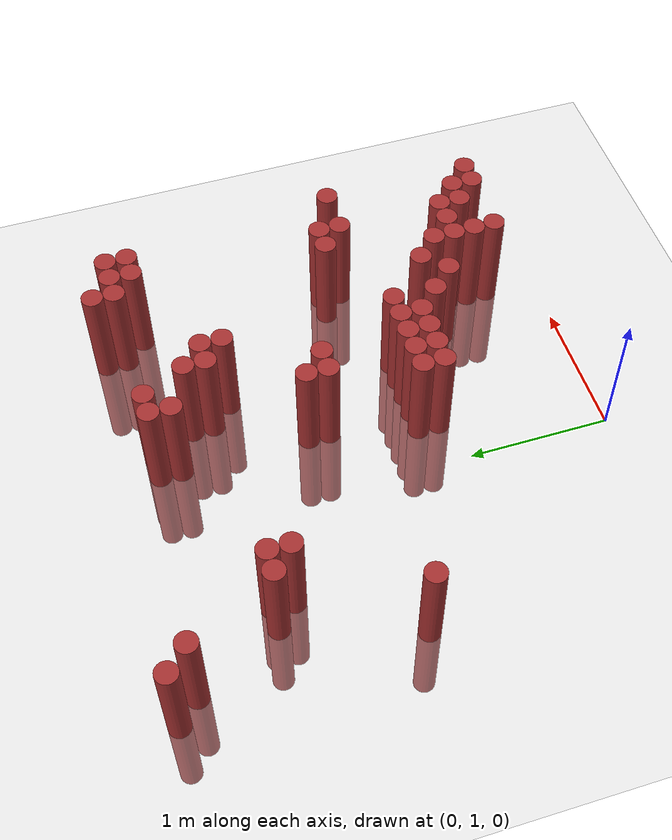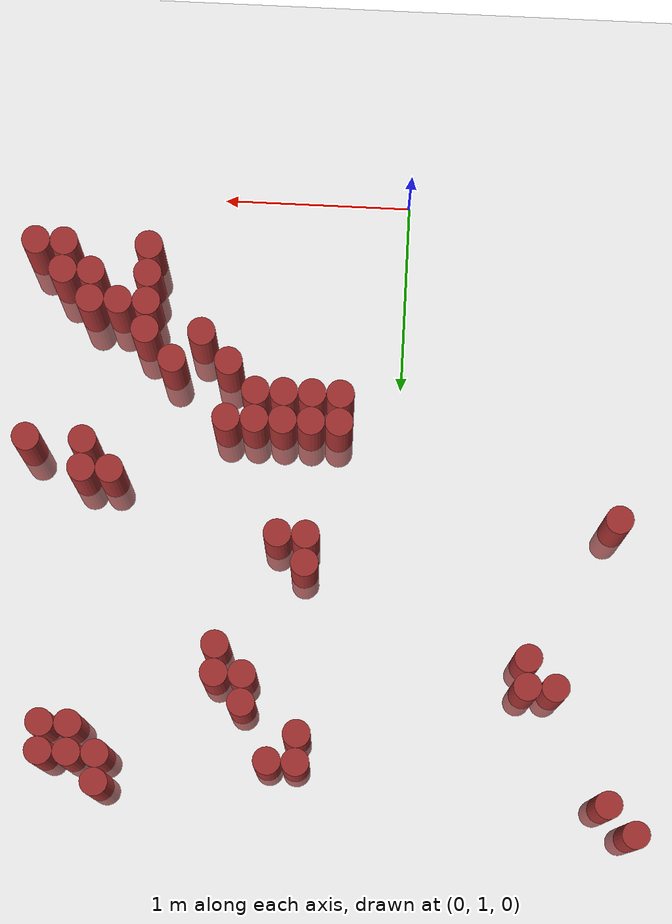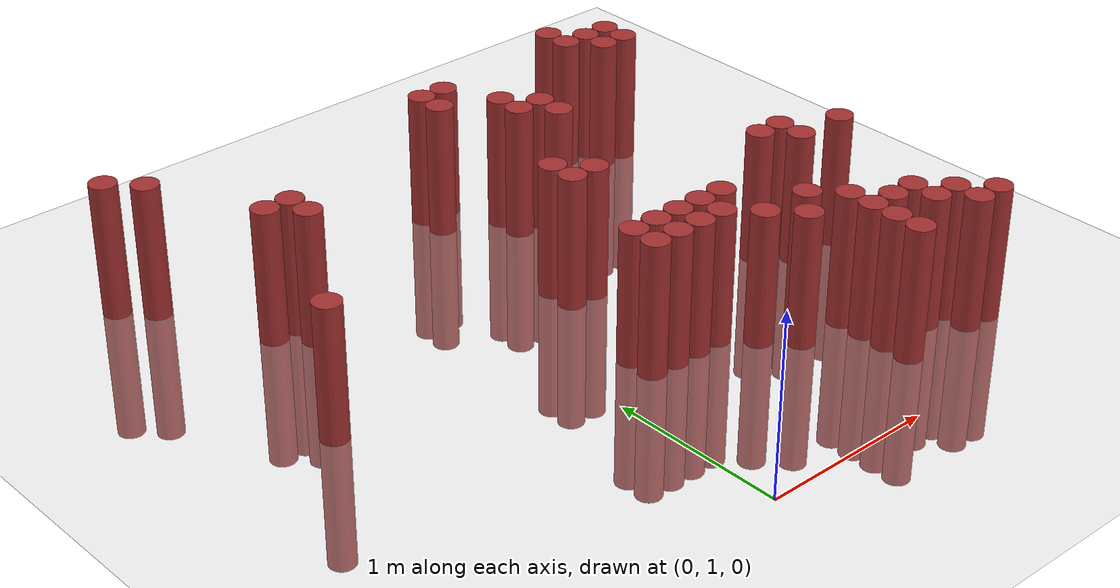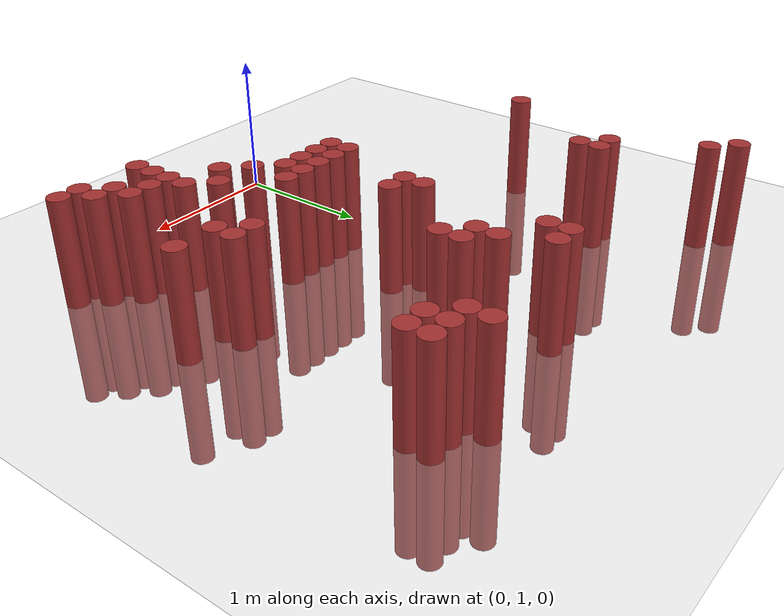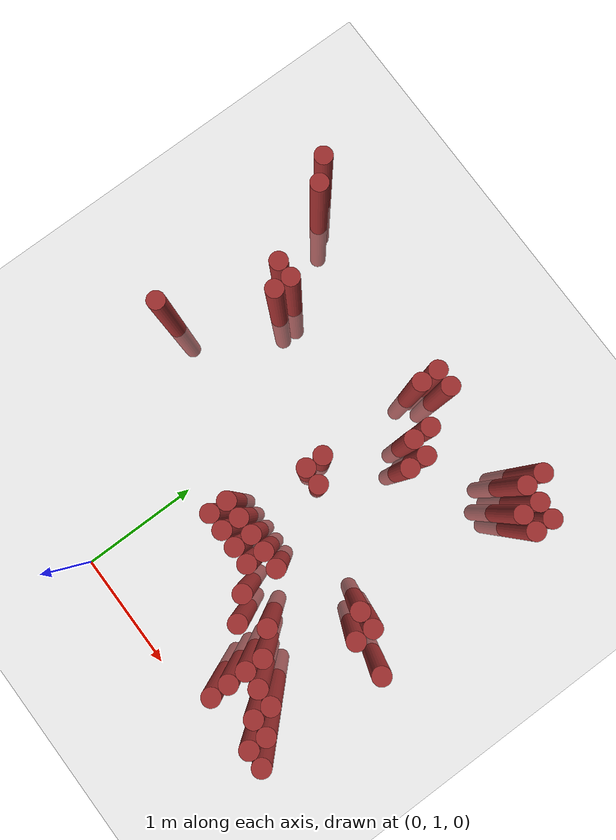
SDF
<sdf version="1.6">
 <world name="default">
  <model name="ground_plane">
   <static>1</static>
   <link name="link">
    <collision name="collision">
     <geometry><plane><normal>0 0 1</normal><size>100 100</size></plane></geometry>
     <surface><friction><ode><mu>100</mu><mu2>50</mu2></ode></friction></surface>
    </collision>
    <visual name="visual">
     <cast_shadows>0</cast_shadows>
     <geometry><plane><normal>0 0 1</normal><size>100 100</size></plane></geometry>
     <material>
      <script><uri>file://media/materials/scripts/gazebo.material</uri><name>Gazebo/Grey</name></script>
     </material>
    </visual>
   </link>
  </model>
  <model name="unit_cylinder_156">
   <static>1</static>
   <pose>-1.325000 4.375000 0.000000 0.000000 0.000000 0.000000</pose>
   <link name="link">
    <inertial>
     <mass>1</mass>
     <inertia><ixx>0.145833</ixx><ixy>0</ixy><ixz>0</ixz><iyy>0.145833</iyy><iyz>0</iyz><izz>0.125</izz></inertia>
    </inertial>
    <collision name="collision">
     <geometry><cylinder><radius>0.075000</radius><length>1.5</length></cylinder></geometry>
    </collision>
    <visual name="visual">
     <geometry><cylinder><radius>0.075000</radius><length>1.5</length></cylinder></geometry>
     <material>
      <ambient>0.648000 0.192000 0.192000 1</ambient>
      <diffuse>0.648000 0.192000 0.192000 1</diffuse>
     </material>
     <material>
      <script><name>Gazebo/Grey</name><uri>file://media/materials/scripts/gazebo.material</uri></script>
     </material>
    </visual>
   </link>
  </model>
  <model name="unit_cylinder_157">
   <static>1</static>
   <pose>-1.175000 2.725000 0.000000 0.000000 0.000000 0.000000</pose>
   <link name="link">
    <inertial>
     <mass>1</mass>
     <inertia><ixx>0.145833</ixx><ixy>0</ixy><ixz>0</ixz><iyy>0.145833</iyy><iyz>0</iyz><izz>0.125</izz></inertia>
    </inertial>
    <collision name="collision">
     <geometry><cylinder><radius>0.075000</radius><length>1.5</length></cylinder></geometry>
    </collision>
    <visual name="visual">
     <geometry><cylinder><radius>0.075000</radius><length>1.5</length></cylinder></geometry>
     <material>
      <ambient>0.648000 0.192000 0.192000 1</ambient>
      <diffuse>0.648000 0.192000 0.192000 1</diffuse>
     </material>
     <material>
      <script><name>Gazebo/Grey</name><uri>file://media/materials/scripts/gazebo.material</uri></script>
     </material>
    </visual>
   </link>
  </model>
  <model name="unit_cylinder_158">
   <static>1</static>
   <pose>-1.175000 4.225000 0.000000 0.000000 0.000000 0.000000</pose>
   <link name="link">
    <inertial>
     <mass>1</mass>
     <inertia><ixx>0.145833</ixx><ixy>0</ixy><ixz>0</ixz><iyy>0.145833</iyy><iyz>0</iyz><izz>0.125</izz></inertia>
    </inertial>
    <collision name="collision">
     <geometry><cylinder><radius>0.075000</radius><length>1.5</length></cylinder></geometry>
    </collision>
    <visual name="visual">
     <geometry><cylinder><radius>0.075000</radius><length>1.5</length></cylinder></geometry>
     <material>
      <ambient>0.648000 0.192000 0.192000 1</ambient>
      <diffuse>0.648000 0.192000 0.192000 1</diffuse>
     </material>
     <material>
      <script><name>Gazebo/Grey</name><uri>file://media/materials/scripts/gazebo.material</uri></script>
     </material>
    </visual>
   </link>
  </model>
  <model name="unit_cylinder_159">
   <static>1</static>
   <pose>-0.875000 3.625000 0.000000 0.000000 0.000000 0.000000</pose>
   <link name="link">
    <inertial>
     <mass>1</mass>
     <inertia><ixx>0.145833</ixx><ixy>0</ixy><ixz>0</ixz><iyy>0.145833</iyy><iyz>0</iyz><izz>0.125</izz></inertia>
    </inertial>
    <collision name="collision">
     <geometry><cylinder><radius>0.075000</radius><length>1.5</length></cylinder></geometry>
    </collision>
    <visual name="visual">
     <geometry><cylinder><radius>0.075000</radius><length>1.5</length></cylinder></geometry>
     <material>
      <ambient>0.648000 0.192000 0.192000 1</ambient>
      <diffuse>0.648000 0.192000 0.192000 1</diffuse>
     </material>
     <material>
      <script><name>Gazebo/Grey</name><uri>file://media/materials/scripts/gazebo.material</uri></script>
     </material>
    </visual>
   </link>
  </model>
  <model name="unit_cylinder_160">
   <static>1</static>
   <pose>-0.725000 3.475000 0.000000 0.000000 0.000000 0.000000</pose>
   <link name="link">
    <inertial>
     <mass>1</mass>
     <inertia><ixx>0.145833</ixx><ixy>0</ixy><ixz>0</ixz><iyy>0.145833</iyy><iyz>0</iyz><izz>0.125</izz></inertia>
    </inertial>
    <collision name="collision">
     <geometry><cylinder><radius>0.075000</radius><length>1.5</length></cylinder></geometry>
    </collision>
    <visual name="visual">
     <geometry><cylinder><radius>0.075000</radius><length>1.5</length></cylinder></geometry>
     <material>
      <ambient>0.648000 0.192000 0.192000 1</ambient>
      <diffuse>0.648000 0.192000 0.192000 1</diffuse>
     </material>
     <material>
      <script><name>Gazebo/Grey</name><uri>file://media/materials/scripts/gazebo.material</uri></script>
     </material>
    </visual>
   </link>
  </model>
  <model name="unit_cylinder_161">
   <static>1</static>
   <pose>-0.725000 3.625000 0.000000 0.000000 0.000000 0.000000</pose>
   <link name="link">
    <inertial>
     <mass>1</mass>
     <inertia><ixx>0.145833</ixx><ixy>0</ixy><ixz>0</ixz><iyy>0.145833</iyy><iyz>0</iyz><izz>0.125</izz></inertia>
    </inertial>
    <collision name="collision">
     <geometry><cylinder><radius>0.075000</radius><length>1.5</length></cylinder></geometry>
    </collision>
    <visual name="visual">
     <geometry><cylinder><radius>0.075000</radius><length>1.5</length></cylinder></geometry>
     <material>
      <ambient>0.648000 0.192000 0.192000 1</ambient>
      <diffuse>0.648000 0.192000 0.192000 1</diffuse>
     </material>
     <material>
      <script><name>Gazebo/Grey</name><uri>file://media/materials/scripts/gazebo.material</uri></script>
     </material>
    </visual>
   </link>
  </model>
  <model name="unit_cylinder_162">
   <static>1</static>
   <pose>0.325000 2.125000 0.000000 0.000000 0.000000 0.000000</pose>
   <link name="link">
    <inertial>
     <mass>1</mass>
     <inertia><ixx>0.145833</ixx><ixy>0</ixy><ixz>0</ixz><iyy>0.145833</iyy><iyz>0</iyz><izz>0.125</izz></inertia>
    </inertial>
    <collision name="collision">
     <geometry><cylinder><radius>0.075000</radius><length>1.5</length></cylinder></geometry>
    </collision>
    <visual name="visual">
     <geometry><cylinder><radius>0.075000</radius><length>1.5</length></cylinder></geometry>
     <material>
      <ambient>0.648000 0.192000 0.192000 1</ambient>
      <diffuse>0.648000 0.192000 0.192000 1</diffuse>
     </material>
     <material>
      <script><name>Gazebo/Grey</name><uri>file://media/materials/scripts/gazebo.material</uri></script>
     </material>
    </visual>
   </link>
  </model>
  <model name="unit_cylinder_163">
   <static>1</static>
   <pose>0.325000 2.275000 0.000000 0.000000 0.000000 0.000000</pose>
   <link name="link">
    <inertial>
     <mass>1</mass>
     <inertia><ixx>0.145833</ixx><ixy>0</ixy><ixz>0</ixz><iyy>0.145833</iyy><iyz>0</iyz><izz>0.125</izz></inertia>
    </inertial>
    <collision name="collision">
     <geometry><cylinder><radius>0.075000</radius><length>1.5</length></cylinder></geometry>
    </collision>
    <visual name="visual">
     <geometry><cylinder><radius>0.075000</radius><length>1.5</length></cylinder></geometry>
     <material>
      <ambient>0.648000 0.192000 0.192000 1</ambient>
      <diffuse>0.648000 0.192000 0.192000 1</diffuse>
     </material>
     <material>
      <script><name>Gazebo/Grey</name><uri>file://media/materials/scripts/gazebo.material</uri></script>
     </material>
    </visual>
   </link>
  </model>
  <model name="unit_cylinder_164">
   <static>1</static>
   <pose>0.475000 2.125000 0.000000 0.000000 0.000000 0.000000</pose>
   <link name="link">
    <inertial>
     <mass>1</mass>
     <inertia><ixx>0.145833</ixx><ixy>0</ixy><ixz>0</ixz><iyy>0.145833</iyy><iyz>0</iyz><izz>0.125</izz></inertia>
    </inertial>
    <collision name="collision">
     <geometry><cylinder><radius>0.075000</radius><length>1.5</length></cylinder></geometry>
    </collision>
    <visual name="visual">
     <geometry><cylinder><radius>0.075000</radius><length>1.5</length></cylinder></geometry>
     <material>
      <ambient>0.648000 0.192000 0.192000 1</ambient>
      <diffuse>0.648000 0.192000 0.192000 1</diffuse>
     </material>
     <material>
      <script><name>Gazebo/Grey</name><uri>file://media/materials/scripts/gazebo.material</uri></script>
     </material>
    </visual>
   </link>
  </model>
  <model name="unit_cylinder_165">
   <static>1</static>
   <pose>0.475000 2.275000 0.000000 0.000000 0.000000 0.000000</pose>
   <link name="link">
    <inertial>
     <mass>1</mass>
     <inertia><ixx>0.145833</ixx><ixy>0</ixy><ixz>0</ixz><iyy>0.145833</iyy><iyz>0</iyz><izz>0.125</izz></inertia>
    </inertial>
    <collision name="collision">
     <geometry><cylinder><radius>0.075000</radius><length>1.5</length></cylinder></geometry>
    </collision>
    <visual name="visual">
     <geometry><cylinder><radius>0.075000</radius><length>1.5</length></cylinder></geometry>
     <material>
      <ambient>0.648000 0.192000 0.192000 1</ambient>
      <diffuse>0.648000 0.192000 0.192000 1</diffuse>
     </material>
     <material>
      <script><name>Gazebo/Grey</name><uri>file://media/materials/scripts/gazebo.material</uri></script>
     </material>
    </visual>
   </link>
  </model>
  <model name="unit_cylinder_166">
   <static>1</static>
   <pose>0.475000 2.875000 0.000000 0.000000 0.000000 0.000000</pose>
   <link name="link">
    <inertial>
     <mass>1</mass>
     <inertia><ixx>0.145833</ixx><ixy>0</ixy><ixz>0</ixz><iyy>0.145833</iyy><iyz>0</iyz><izz>0.125</izz></inertia>
    </inertial>
    <collision name="collision">
     <geometry><cylinder><radius>0.075000</radius><length>1.5</length></cylinder></geometry>
    </collision>
    <visual name="visual">
     <geometry><cylinder><radius>0.075000</radius><length>1.5</length></cylinder></geometry>
     <material>
      <ambient>0.648000 0.192000 0.192000 1</ambient>
      <diffuse>0.648000 0.192000 0.192000 1</diffuse>
     </material>
     <material>
      <script><name>Gazebo/Grey</name><uri>file://media/materials/scripts/gazebo.material</uri></script>
     </material>
    </visual>
   </link>
  </model>
  <model name="unit_cylinder_167">
   <static>1</static>
   <pose>0.475000 3.025000 0.000000 0.000000 0.000000 0.000000</pose>
   <link name="link">
    <inertial>
     <mass>1</mass>
     <inertia><ixx>0.145833</ixx><ixy>0</ixy><ixz>0</ixz><iyy>0.145833</iyy><iyz>0</iyz><izz>0.125</izz></inertia>
    </inertial>
    <collision name="collision">
     <geometry><cylinder><radius>0.075000</radius><length>1.5</length></cylinder></geometry>
    </collision>
    <visual name="visual">
     <geometry><cylinder><radius>0.075000</radius><length>1.5</length></cylinder></geometry>
     <material>
      <ambient>0.648000 0.192000 0.192000 1</ambient>
      <diffuse>0.648000 0.192000 0.192000 1</diffuse>
     </material>
     <material>
      <script><name>Gazebo/Grey</name><uri>file://media/materials/scripts/gazebo.material</uri></script>
     </material>
    </visual>
   </link>
  </model>
  <model name="unit_cylinder_168">
   <static>1</static>
   <pose>0.475000 3.925000 0.000000 0.000000 0.000000 0.000000</pose>
   <link name="link">
    <inertial>
     <mass>1</mass>
     <inertia><ixx>0.145833</ixx><ixy>0</ixy><ixz>0</ixz><iyy>0.145833</iyy><iyz>0</iyz><izz>0.125</izz></inertia>
    </inertial>
    <collision name="collision">
     <geometry><cylinder><radius>0.075000</radius><length>1.5</length></cylinder></geometry>
    </collision>
    <visual name="visual">
     <geometry><cylinder><radius>0.075000</radius><length>1.5</length></cylinder></geometry>
     <material>
      <ambient>0.648000 0.192000 0.192000 1</ambient>
      <diffuse>0.648000 0.192000 0.192000 1</diffuse>
     </material>
     <material>
      <script><name>Gazebo/Grey</name><uri>file://media/materials/scripts/gazebo.material</uri></script>
     </material>
    </visual>
   </link>
  </model>
  <model name="unit_cylinder_169">
   <static>1</static>
   <pose>0.475000 4.075000 0.000000 0.000000 0.000000 0.000000</pose>
   <link name="link">
    <inertial>
     <mass>1</mass>
     <inertia><ixx>0.145833</ixx><ixy>0</ixy><ixz>0</ixz><iyy>0.145833</iyy><iyz>0</iyz><izz>0.125</izz></inertia>
    </inertial>
    <collision name="collision">
     <geometry><cylinder><radius>0.075000</radius><length>1.5</length></cylinder></geometry>
    </collision>
    <visual name="visual">
     <geometry><cylinder><radius>0.075000</radius><length>1.5</length></cylinder></geometry>
     <material>
      <ambient>0.648000 0.192000 0.192000 1</ambient>
      <diffuse>0.648000 0.192000 0.192000 1</diffuse>
     </material>
     <material>
      <script><name>Gazebo/Grey</name><uri>file://media/materials/scripts/gazebo.material</uri></script>
     </material>
    </visual>
   </link>
  </model>
  <model name="unit_cylinder_170">
   <static>1</static>
   <pose>0.625000 2.125000 0.000000 0.000000 0.000000 0.000000</pose>
   <link name="link">
    <inertial>
     <mass>1</mass>
     <inertia><ixx>0.145833</ixx><ixy>0</ixy><ixz>0</ixz><iyy>0.145833</iyy><iyz>0</iyz><izz>0.125</izz></inertia>
    </inertial>
    <collision name="collision">
     <geometry><cylinder><radius>0.075000</radius><length>1.5</length></cylinder></geometry>
    </collision>
    <visual name="visual">
     <geometry><cylinder><radius>0.075000</radius><length>1.5</length></cylinder></geometry>
     <material>
      <ambient>0.648000 0.192000 0.192000 1</ambient>
      <diffuse>0.648000 0.192000 0.192000 1</diffuse>
     </material>
     <material>
      <script><name>Gazebo/Grey</name><uri>file://media/materials/scripts/gazebo.material</uri></script>
     </material>
    </visual>
   </link>
  </model>
  <model name="unit_cylinder_171">
   <static>1</static>
   <pose>0.625000 2.275000 0.000000 0.000000 0.000000 0.000000</pose>
   <link name="link">
    <inertial>
     <mass>1</mass>
     <inertia><ixx>0.145833</ixx><ixy>0</ixy><ixz>0</ixz><iyy>0.145833</iyy><iyz>0</iyz><izz>0.125</izz></inertia>
    </inertial>
    <collision name="collision">
     <geometry><cylinder><radius>0.075000</radius><length>1.5</length></cylinder></geometry>
    </collision>
    <visual name="visual">
     <geometry><cylinder><radius>0.075000</radius><length>1.5</length></cylinder></geometry>
     <material>
      <ambient>0.648000 0.192000 0.192000 1</ambient>
      <diffuse>0.648000 0.192000 0.192000 1</diffuse>
     </material>
     <material>
      <script><name>Gazebo/Grey</name><uri>file://media/materials/scripts/gazebo.material</uri></script>
     </material>
    </visual>
   </link>
  </model>
  <model name="unit_cylinder_172">
   <static>1</static>
   <pose>0.625000 2.875000 0.000000 0.000000 0.000000 0.000000</pose>
   <link name="link">
    <inertial>
     <mass>1</mass>
     <inertia><ixx>0.145833</ixx><ixy>0</ixy><ixz>0</ixz><iyy>0.145833</iyy><iyz>0</iyz><izz>0.125</izz></inertia>
    </inertial>
    <collision name="collision">
     <geometry><cylinder><radius>0.075000</radius><length>1.5</length></cylinder></geometry>
    </collision>
    <visual name="visual">
     <geometry><cylinder><radius>0.075000</radius><length>1.5</length></cylinder></geometry>
     <material>
      <ambient>0.648000 0.192000 0.192000 1</ambient>
      <diffuse>0.648000 0.192000 0.192000 1</diffuse>
     </material>
     <material>
      <script><name>Gazebo/Grey</name><uri>file://media/materials/scripts/gazebo.material</uri></script>
     </material>
    </visual>
   </link>
  </model>
  <model name="unit_cylinder_173">
   <static>1</static>
   <pose>0.625000 4.075000 0.000000 0.000000 0.000000 0.000000</pose>
   <link name="link">
    <inertial>
     <mass>1</mass>
     <inertia><ixx>0.145833</ixx><ixy>0</ixy><ixz>0</ixz><iyy>0.145833</iyy><iyz>0</iyz><izz>0.125</izz></inertia>
    </inertial>
    <collision name="collision">
     <geometry><cylinder><radius>0.075000</radius><length>1.5</length></cylinder></geometry>
    </collision>
    <visual name="visual">
     <geometry><cylinder><radius>0.075000</radius><length>1.5</length></cylinder></geometry>
     <material>
      <ambient>0.648000 0.192000 0.192000 1</ambient>
      <diffuse>0.648000 0.192000 0.192000 1</diffuse>
     </material>
     <material>
      <script><name>Gazebo/Grey</name><uri>file://media/materials/scripts/gazebo.material</uri></script>
     </material>
    </visual>
   </link>
  </model>
  <model name="unit_cylinder_175">
   <static>1</static>
   <pose>0.775000 2.125000 0.000000 0.000000 0.000000 0.000000</pose>
   <link name="link">
    <inertial>
     <mass>1</mass>
     <inertia><ixx>0.145833</ixx><ixy>0</ixy><ixz>0</ixz><iyy>0.145833</iyy><iyz>0</iyz><izz>0.125</izz></inertia>
    </inertial>
    <collision name="collision">
     <geometry><cylinder><radius>0.075000</radius><length>1.5</length></cylinder></geometry>
    </collision>
    <visual name="visual">
     <geometry><cylinder><radius>0.075000</radius><length>1.5</length></cylinder></geometry>
     <material>
      <ambient>0.648000 0.192000 0.192000 1</ambient>
      <diffuse>0.648000 0.192000 0.192000 1</diffuse>
     </material>
     <material>
      <script><name>Gazebo/Grey</name><uri>file://media/materials/scripts/gazebo.material</uri></script>
     </material>
    </visual>
   </link>
  </model>
  <model name="unit_cylinder_176">
   <static>1</static>
   <pose>0.775000 2.275000 0.000000 0.000000 0.000000 0.000000</pose>
   <link name="link">
    <inertial>
     <mass>1</mass>
     <inertia><ixx>0.145833</ixx><ixy>0</ixy><ixz>0</ixz><iyy>0.145833</iyy><iyz>0</iyz><izz>0.125</izz></inertia>
    </inertial>
    <collision name="collision">
     <geometry><cylinder><radius>0.075000</radius><length>1.5</length></cylinder></geometry>
    </collision>
    <visual name="visual">
     <geometry><cylinder><radius>0.075000</radius><length>1.5</length></cylinder></geometry>
     <material>
      <ambient>0.648000 0.192000 0.192000 1</ambient>
      <diffuse>0.648000 0.192000 0.192000 1</diffuse>
     </material>
     <material>
      <script><name>Gazebo/Grey</name><uri>file://media/materials/scripts/gazebo.material</uri></script>
     </material>
    </visual>
   </link>
  </model>
  <model name="unit_cylinder_177">
   <static>1</static>
   <pose>0.775000 3.625000 0.000000 0.000000 0.000000 0.000000</pose>
   <link name="link">
    <inertial>
     <mass>1</mass>
     <inertia><ixx>0.145833</ixx><ixy>0</ixy><ixz>0</ixz><iyy>0.145833</iyy><iyz>0</iyz><izz>0.125</izz></inertia>
    </inertial>
    <collision name="collision">
     <geometry><cylinder><radius>0.075000</radius><length>1.5</length></cylinder></geometry>
    </collision>
    <visual name="visual">
     <geometry><cylinder><radius>0.075000</radius><length>1.5</length></cylinder></geometry>
     <material>
      <ambient>0.648000 0.192000 0.192000 1</ambient>
      <diffuse>0.648000 0.192000 0.192000 1</diffuse>
     </material>
     <material>
      <script><name>Gazebo/Grey</name><uri>file://media/materials/scripts/gazebo.material</uri></script>
     </material>
    </visual>
   </link>
  </model>
  <model name="unit_cylinder_178">
   <static>1</static>
   <pose>0.775000 3.775000 0.000000 0.000000 0.000000 0.000000</pose>
   <link name="link">
    <inertial>
     <mass>1</mass>
     <inertia><ixx>0.145833</ixx><ixy>0</ixy><ixz>0</ixz><iyy>0.145833</iyy><iyz>0</iyz><izz>0.125</izz></inertia>
    </inertial>
    <collision name="collision">
     <geometry><cylinder><radius>0.075000</radius><length>1.5</length></cylinder></geometry>
    </collision>
    <visual name="visual">
     <geometry><cylinder><radius>0.075000</radius><length>1.5</length></cylinder></geometry>
     <material>
      <ambient>0.648000 0.192000 0.192000 1</ambient>
      <diffuse>0.648000 0.192000 0.192000 1</diffuse>
     </material>
     <material>
      <script><name>Gazebo/Grey</name><uri>file://media/materials/scripts/gazebo.material</uri></script>
     </material>
    </visual>
   </link>
  </model>
  <model name="unit_cylinder_182">
   <static>1</static>
   <pose>0.925000 1.975000 0.000000 0.000000 0.000000 0.000000</pose>
   <link name="link">
    <inertial>
     <mass>1</mass>
     <inertia><ixx>0.145833</ixx><ixy>0</ixy><ixz>0</ixz><iyy>0.145833</iyy><iyz>0</iyz><izz>0.125</izz></inertia>
    </inertial>
    <collision name="collision">
     <geometry><cylinder><radius>0.075000</radius><length>1.5</length></cylinder></geometry>
    </collision>
    <visual name="visual">
     <geometry><cylinder><radius>0.075000</radius><length>1.5</length></cylinder></geometry>
     <material>
      <ambient>0.648000 0.192000 0.192000 1</ambient>
      <diffuse>0.648000 0.192000 0.192000 1</diffuse>
     </material>
     <material>
      <script><name>Gazebo/Grey</name><uri>file://media/materials/scripts/gazebo.material</uri></script>
     </material>
    </visual>
   </link>
  </model>
  <model name="unit_cylinder_183">
   <static>1</static>
   <pose>0.925000 2.275000 0.000000 0.000000 0.000000 0.000000</pose>
   <link name="link">
    <inertial>
     <mass>1</mass>
     <inertia><ixx>0.145833</ixx><ixy>0</ixy><ixz>0</ixz><iyy>0.145833</iyy><iyz>0</iyz><izz>0.125</izz></inertia>
    </inertial>
    <collision name="collision">
     <geometry><cylinder><radius>0.075000</radius><length>1.5</length></cylinder></geometry>
    </collision>
    <visual name="visual">
     <geometry><cylinder><radius>0.075000</radius><length>1.5</length></cylinder></geometry>
     <material>
      <ambient>0.648000 0.192000 0.192000 1</ambient>
      <diffuse>0.648000 0.192000 0.192000 1</diffuse>
     </material>
     <material>
      <script><name>Gazebo/Grey</name><uri>file://media/materials/scripts/gazebo.material</uri></script>
     </material>
    </visual>
   </link>
  </model>
  <model name="unit_cylinder_184">
   <static>1</static>
   <pose>0.925000 3.475000 0.000000 0.000000 0.000000 0.000000</pose>
   <link name="link">
    <inertial>
     <mass>1</mass>
     <inertia><ixx>0.145833</ixx><ixy>0</ixy><ixz>0</ixz><iyy>0.145833</iyy><iyz>0</iyz><izz>0.125</izz></inertia>
    </inertial>
    <collision name="collision">
     <geometry><cylinder><radius>0.075000</radius><length>1.5</length></cylinder></geometry>
    </collision>
    <visual name="visual">
     <geometry><cylinder><radius>0.075000</radius><length>1.5</length></cylinder></geometry>
     <material>
      <ambient>0.648000 0.192000 0.192000 1</ambient>
      <diffuse>0.648000 0.192000 0.192000 1</diffuse>
     </material>
     <material>
      <script><name>Gazebo/Grey</name><uri>file://media/materials/scripts/gazebo.material</uri></script>
     </material>
    </visual>
   </link>
  </model>
  <model name="unit_cylinder_185">
   <static>1</static>
   <pose>0.925000 3.625000 0.000000 0.000000 0.000000 0.000000</pose>
   <link name="link">
    <inertial>
     <mass>1</mass>
     <inertia><ixx>0.145833</ixx><ixy>0</ixy><ixz>0</ixz><iyy>0.145833</iyy><iyz>0</iyz><izz>0.125</izz></inertia>
    </inertial>
    <collision name="collision">
     <geometry><cylinder><radius>0.075000</radius><length>1.5</length></cylinder></geometry>
    </collision>
    <visual name="visual">
     <geometry><cylinder><radius>0.075000</radius><length>1.5</length></cylinder></geometry>
     <material>
      <ambient>0.648000 0.192000 0.192000 1</ambient>
      <diffuse>0.648000 0.192000 0.192000 1</diffuse>
     </material>
     <material>
      <script><name>Gazebo/Grey</name><uri>file://media/materials/scripts/gazebo.material</uri></script>
     </material>
    </visual>
   </link>
  </model>
  <model name="unit_cylinder_189">
   <static>1</static>
   <pose>1.075000 1.825000 0.000000 0.000000 0.000000 0.000000</pose>
   <link name="link">
    <inertial>
     <mass>1</mass>
     <inertia><ixx>0.145833</ixx><ixy>0</ixy><ixz>0</ixz><iyy>0.145833</iyy><iyz>0</iyz><izz>0.125</izz></inertia>
    </inertial>
    <collision name="collision">
     <geometry><cylinder><radius>0.075000</radius><length>1.5</length></cylinder></geometry>
    </collision>
    <visual name="visual">
     <geometry><cylinder><radius>0.075000</radius><length>1.5</length></cylinder></geometry>
     <material>
      <ambient>0.648000 0.192000 0.192000 1</ambient>
      <diffuse>0.648000 0.192000 0.192000 1</diffuse>
     </material>
     <material>
      <script><name>Gazebo/Grey</name><uri>file://media/materials/scripts/gazebo.material</uri></script>
     </material>
    </visual>
   </link>
  </model>
  <model name="unit_cylinder_196">
   <static>1</static>
   <pose>1.225000 1.975000 0.000000 0.000000 0.000000 0.000000</pose>
   <link name="link">
    <inertial>
     <mass>1</mass>
     <inertia><ixx>0.145833</ixx><ixy>0</ixy><ixz>0</ixz><iyy>0.145833</iyy><iyz>0</iyz><izz>0.125</izz></inertia>
    </inertial>
    <collision name="collision">
     <geometry><cylinder><radius>0.075000</radius><length>1.5</length></cylinder></geometry>
    </collision>
    <visual name="visual">
     <geometry><cylinder><radius>0.075000</radius><length>1.5</length></cylinder></geometry>
     <material>
      <ambient>0.648000 0.192000 0.192000 1</ambient>
      <diffuse>0.648000 0.192000 0.192000 1</diffuse>
     </material>
     <material>
      <script><name>Gazebo/Grey</name><uri>file://media/materials/scripts/gazebo.material</uri></script>
     </material>
    </visual>
   </link>
  </model>
  <model name="unit_cylinder_200">
   <static>1</static>
   <pose>1.375000 1.375000 0.000000 0.000000 0.000000 0.000000</pose>
   <link name="link">
    <inertial>
     <mass>1</mass>
     <inertia><ixx>0.145833</ixx><ixy>0</ixy><ixz>0</ixz><iyy>0.145833</iyy><iyz>0</iyz><izz>0.125</izz></inertia>
    </inertial>
    <collision name="collision">
     <geometry><cylinder><radius>0.075000</radius><length>1.5</length></cylinder></geometry>
    </collision>
    <visual name="visual">
     <geometry><cylinder><radius>0.075000</radius><length>1.5</length></cylinder></geometry>
     <material>
      <ambient>0.648000 0.192000 0.192000 1</ambient>
      <diffuse>0.648000 0.192000 0.192000 1</diffuse>
     </material>
     <material>
      <script><name>Gazebo/Grey</name><uri>file://media/materials/scripts/gazebo.material</uri></script>
     </material>
    </visual>
   </link>
  </model>
  <model name="unit_cylinder_201">
   <static>1</static>
   <pose>1.375000 1.525000 0.000000 0.000000 0.000000 0.000000</pose>
   <link name="link">
    <inertial>
     <mass>1</mass>
     <inertia><ixx>0.145833</ixx><ixy>0</ixy><ixz>0</ixz><iyy>0.145833</iyy><iyz>0</iyz><izz>0.125</izz></inertia>
    </inertial>
    <collision name="collision">
     <geometry><cylinder><radius>0.075000</radius><length>1.5</length></cylinder></geometry>
    </collision>
    <visual name="visual">
     <geometry><cylinder><radius>0.075000</radius><length>1.5</length></cylinder></geometry>
     <material>
      <ambient>0.648000 0.192000 0.192000 1</ambient>
      <diffuse>0.648000 0.192000 0.192000 1</diffuse>
     </material>
     <material>
      <script><name>Gazebo/Grey</name><uri>file://media/materials/scripts/gazebo.material</uri></script>
     </material>
    </visual>
   </link>
  </model>
  <model name="unit_cylinder_202">
   <static>1</static>
   <pose>1.375000 1.675000 0.000000 0.000000 0.000000 0.000000</pose>
   <link name="link">
    <inertial>
     <mass>1</mass>
     <inertia><ixx>0.145833</ixx><ixy>0</ixy><ixz>0</ixz><iyy>0.145833</iyy><iyz>0</iyz><izz>0.125</izz></inertia>
    </inertial>
    <collision name="collision">
     <geometry><cylinder><radius>0.075000</radius><length>1.5</length></cylinder></geometry>
    </collision>
    <visual name="visual">
     <geometry><cylinder><radius>0.075000</radius><length>1.5</length></cylinder></geometry>
     <material>
      <ambient>0.648000 0.192000 0.192000 1</ambient>
      <diffuse>0.648000 0.192000 0.192000 1</diffuse>
     </material>
     <material>
      <script><name>Gazebo/Grey</name><uri>file://media/materials/scripts/gazebo.material</uri></script>
     </material>
    </visual>
   </link>
  </model>
  <model name="unit_cylinder_203">
   <static>1</static>
   <pose>1.375000 1.825000 0.000000 0.000000 0.000000 0.000000</pose>
   <link name="link">
    <inertial>
     <mass>1</mass>
     <inertia><ixx>0.145833</ixx><ixy>0</ixy><ixz>0</ixz><iyy>0.145833</iyy><iyz>0</iyz><izz>0.125</izz></inertia>
    </inertial>
    <collision name="collision">
     <geometry><cylinder><radius>0.075000</radius><length>1.5</length></cylinder></geometry>
    </collision>
    <visual name="visual">
     <geometry><cylinder><radius>0.075000</radius><length>1.5</length></cylinder></geometry>
     <material>
      <ambient>0.648000 0.192000 0.192000 1</ambient>
      <diffuse>0.648000 0.192000 0.192000 1</diffuse>
     </material>
     <material>
      <script><name>Gazebo/Grey</name><uri>file://media/materials/scripts/gazebo.material</uri></script>
     </material>
    </visual>
   </link>
  </model>
  <model name="unit_cylinder_205">
   <static>1</static>
   <pose>1.525000 1.675000 0.000000 0.000000 0.000000 0.000000</pose>
   <link name="link">
    <inertial>
     <mass>1</mass>
     <inertia><ixx>0.145833</ixx><ixy>0</ixy><ixz>0</ixz><iyy>0.145833</iyy><iyz>0</iyz><izz>0.125</izz></inertia>
    </inertial>
    <collision name="collision">
     <geometry><cylinder><radius>0.075000</radius><length>1.5</length></cylinder></geometry>
    </collision>
    <visual name="visual">
     <geometry><cylinder><radius>0.075000</radius><length>1.5</length></cylinder></geometry>
     <material>
      <ambient>0.648000 0.192000 0.192000 1</ambient>
      <diffuse>0.648000 0.192000 0.192000 1</diffuse>
     </material>
     <material>
      <script><name>Gazebo/Grey</name><uri>file://media/materials/scripts/gazebo.material</uri></script>
     </material>
    </visual>
   </link>
  </model>
  <model name="unit_cylinder_206">
   <static>1</static>
   <pose>1.525000 2.575000 0.000000 0.000000 0.000000 0.000000</pose>
   <link name="link">
    <inertial>
     <mass>1</mass>
     <inertia><ixx>0.145833</ixx><ixy>0</ixy><ixz>0</ixz><iyy>0.145833</iyy><iyz>0</iyz><izz>0.125</izz></inertia>
    </inertial>
    <collision name="collision">
     <geometry><cylinder><radius>0.075000</radius><length>1.5</length></cylinder></geometry>
    </collision>
    <visual name="visual">
     <geometry><cylinder><radius>0.075000</radius><length>1.5</length></cylinder></geometry>
     <material>
      <ambient>0.648000 0.192000 0.192000 1</ambient>
      <diffuse>0.648000 0.192000 0.192000 1</diffuse>
     </material>
     <material>
      <script><name>Gazebo/Grey</name><uri>file://media/materials/scripts/gazebo.material</uri></script>
     </material>
    </visual>
   </link>
  </model>
  <model name="unit_cylinder_207">
   <static>1</static>
   <pose>1.525000 4.075000 0.000000 0.000000 0.000000 0.000000</pose>
   <link name="link">
    <inertial>
     <mass>1</mass>
     <inertia><ixx>0.145833</ixx><ixy>0</ixy><ixz>0</ixz><iyy>0.145833</iyy><iyz>0</iyz><izz>0.125</izz></inertia>
    </inertial>
    <collision name="collision">
     <geometry><cylinder><radius>0.075000</radius><length>1.5</length></cylinder></geometry>
    </collision>
    <visual name="visual">
     <geometry><cylinder><radius>0.075000</radius><length>1.5</length></cylinder></geometry>
     <material>
      <ambient>0.648000 0.192000 0.192000 1</ambient>
      <diffuse>0.648000 0.192000 0.192000 1</diffuse>
     </material>
     <material>
      <script><name>Gazebo/Grey</name><uri>file://media/materials/scripts/gazebo.material</uri></script>
     </material>
    </visual>
   </link>
  </model>
  <model name="unit_cylinder_208">
   <static>1</static>
   <pose>1.525000 4.225000 0.000000 0.000000 0.000000 0.000000</pose>
   <link name="link">
    <inertial>
     <mass>1</mass>
     <inertia><ixx>0.145833</ixx><ixy>0</ixy><ixz>0</ixz><iyy>0.145833</iyy><iyz>0</iyz><izz>0.125</izz></inertia>
    </inertial>
    <collision name="collision">
     <geometry><cylinder><radius>0.075000</radius><length>1.5</length></cylinder></geometry>
    </collision>
    <visual name="visual">
     <geometry><cylinder><radius>0.075000</radius><length>1.5</length></cylinder></geometry>
     <material>
      <ambient>0.648000 0.192000 0.192000 1</ambient>
      <diffuse>0.648000 0.192000 0.192000 1</diffuse>
     </material>
     <material>
      <script><name>Gazebo/Grey</name><uri>file://media/materials/scripts/gazebo.material</uri></script>
     </material>
    </visual>
   </link>
  </model>
  <model name="unit_cylinder_210">
   <static>1</static>
   <pose>1.675000 1.525000 0.000000 0.000000 0.000000 0.000000</pose>
   <link name="link">
    <inertial>
     <mass>1</mass>
     <inertia><ixx>0.145833</ixx><ixy>0</ixy><ixz>0</ixz><iyy>0.145833</iyy><iyz>0</iyz><izz>0.125</izz></inertia>
    </inertial>
    <collision name="collision">
     <geometry><cylinder><radius>0.075000</radius><length>1.5</length></cylinder></geometry>
    </collision>
    <visual name="visual">
     <geometry><cylinder><radius>0.075000</radius><length>1.5</length></cylinder></geometry>
     <material>
      <ambient>0.648000 0.192000 0.192000 1</ambient>
      <diffuse>0.648000 0.192000 0.192000 1</diffuse>
     </material>
     <material>
      <script><name>Gazebo/Grey</name><uri>file://media/materials/scripts/gazebo.material</uri></script>
     </material>
    </visual>
   </link>
  </model>
  <model name="unit_cylinder_211">
   <static>1</static>
   <pose>1.675000 1.675000 0.000000 0.000000 0.000000 0.000000</pose>
   <link name="link">
    <inertial>
     <mass>1</mass>
     <inertia><ixx>0.145833</ixx><ixy>0</ixy><ixz>0</ixz><iyy>0.145833</iyy><iyz>0</iyz><izz>0.125</izz></inertia>
    </inertial>
    <collision name="collision">
     <geometry><cylinder><radius>0.075000</radius><length>1.5</length></cylinder></geometry>
    </collision>
    <visual name="visual">
     <geometry><cylinder><radius>0.075000</radius><length>1.5</length></cylinder></geometry>
     <material>
      <ambient>0.648000 0.192000 0.192000 1</ambient>
      <diffuse>0.648000 0.192000 0.192000 1</diffuse>
     </material>
     <material>
      <script><name>Gazebo/Grey</name><uri>file://media/materials/scripts/gazebo.material</uri></script>
     </material>
    </visual>
   </link>
  </model>
  <model name="unit_cylinder_212">
   <static>1</static>
   <pose>1.675000 2.425000 0.000000 0.000000 0.000000 0.000000</pose>
   <link name="link">
    <inertial>
     <mass>1</mass>
     <inertia><ixx>0.145833</ixx><ixy>0</ixy><ixz>0</ixz><iyy>0.145833</iyy><iyz>0</iyz><izz>0.125</izz></inertia>
    </inertial>
    <collision name="collision">
     <geometry><cylinder><radius>0.075000</radius><length>1.5</length></cylinder></geometry>
    </collision>
    <visual name="visual">
     <geometry><cylinder><radius>0.075000</radius><length>1.5</length></cylinder></geometry>
     <material>
      <ambient>0.648000 0.192000 0.192000 1</ambient>
      <diffuse>0.648000 0.192000 0.192000 1</diffuse>
     </material>
     <material>
      <script><name>Gazebo/Grey</name><uri>file://media/materials/scripts/gazebo.material</uri></script>
     </material>
    </visual>
   </link>
  </model>
  <model name="unit_cylinder_213">
   <static>1</static>
   <pose>1.675000 2.575000 0.000000 0.000000 0.000000 0.000000</pose>
   <link name="link">
    <inertial>
     <mass>1</mass>
     <inertia><ixx>0.145833</ixx><ixy>0</ixy><ixz>0</ixz><iyy>0.145833</iyy><iyz>0</iyz><izz>0.125</izz></inertia>
    </inertial>
    <collision name="collision">
     <geometry><cylinder><radius>0.075000</radius><length>1.5</length></cylinder></geometry>
    </collision>
    <visual name="visual">
     <geometry><cylinder><radius>0.075000</radius><length>1.5</length></cylinder></geometry>
     <material>
      <ambient>0.648000 0.192000 0.192000 1</ambient>
      <diffuse>0.648000 0.192000 0.192000 1</diffuse>
     </material>
     <material>
      <script><name>Gazebo/Grey</name><uri>file://media/materials/scripts/gazebo.material</uri></script>
     </material>
    </visual>
   </link>
  </model>
  <model name="unit_cylinder_214">
   <static>1</static>
   <pose>1.675000 3.925000 0.000000 0.000000 0.000000 0.000000</pose>
   <link name="link">
    <inertial>
     <mass>1</mass>
     <inertia><ixx>0.145833</ixx><ixy>0</ixy><ixz>0</ixz><iyy>0.145833</iyy><iyz>0</iyz><izz>0.125</izz></inertia>
    </inertial>
    <collision name="collision">
     <geometry><cylinder><radius>0.075000</radius><length>1.5</length></cylinder></geometry>
    </collision>
    <visual name="visual">
     <geometry><cylinder><radius>0.075000</radius><length>1.5</length></cylinder></geometry>
     <material>
      <ambient>0.648000 0.192000 0.192000 1</ambient>
      <diffuse>0.648000 0.192000 0.192000 1</diffuse>
     </material>
     <material>
      <script><name>Gazebo/Grey</name><uri>file://media/materials/scripts/gazebo.material</uri></script>
     </material>
    </visual>
   </link>
  </model>
  <model name="unit_cylinder_215">
   <static>1</static>
   <pose>1.675000 4.075000 0.000000 0.000000 0.000000 0.000000</pose>
   <link name="link">
    <inertial>
     <mass>1</mass>
     <inertia><ixx>0.145833</ixx><ixy>0</ixy><ixz>0</ixz><iyy>0.145833</iyy><iyz>0</iyz><izz>0.125</izz></inertia>
    </inertial>
    <collision name="collision">
     <geometry><cylinder><radius>0.075000</radius><length>1.5</length></cylinder></geometry>
    </collision>
    <visual name="visual">
     <geometry><cylinder><radius>0.075000</radius><length>1.5</length></cylinder></geometry>
     <material>
      <ambient>0.648000 0.192000 0.192000 1</ambient>
      <diffuse>0.648000 0.192000 0.192000 1</diffuse>
     </material>
     <material>
      <script><name>Gazebo/Grey</name><uri>file://media/materials/scripts/gazebo.material</uri></script>
     </material>
    </visual>
   </link>
  </model>
  <model name="unit_cylinder_217">
   <static>1</static>
   <pose>1.825000 1.375000 0.000000 0.000000 0.000000 0.000000</pose>
   <link name="link">
    <inertial>
     <mass>1</mass>
     <inertia><ixx>0.145833</ixx><ixy>0</ixy><ixz>0</ixz><iyy>0.145833</iyy><iyz>0</iyz><izz>0.125</izz></inertia>
    </inertial>
    <collision name="collision">
     <geometry><cylinder><radius>0.075000</radius><length>1.5</length></cylinder></geometry>
    </collision>
    <visual name="visual">
     <geometry><cylinder><radius>0.075000</radius><length>1.5</length></cylinder></geometry>
     <material>
      <ambient>0.648000 0.192000 0.192000 1</ambient>
      <diffuse>0.648000 0.192000 0.192000 1</diffuse>
     </material>
     <material>
      <script><name>Gazebo/Grey</name><uri>file://media/materials/scripts/gazebo.material</uri></script>
     </material>
    </visual>
   </link>
  </model>
  <model name="unit_cylinder_218">
   <static>1</static>
   <pose>1.825000 1.525000 0.000000 0.000000 0.000000 0.000000</pose>
   <link name="link">
    <inertial>
     <mass>1</mass>
     <inertia><ixx>0.145833</ixx><ixy>0</ixy><ixz>0</ixz><iyy>0.145833</iyy><iyz>0</iyz><izz>0.125</izz></inertia>
    </inertial>
    <collision name="collision">
     <geometry><cylinder><radius>0.075000</radius><length>1.5</length></cylinder></geometry>
    </collision>
    <visual name="visual">
     <geometry><cylinder><radius>0.075000</radius><length>1.5</length></cylinder></geometry>
     <material>
      <ambient>0.648000 0.192000 0.192000 1</ambient>
      <diffuse>0.648000 0.192000 0.192000 1</diffuse>
     </material>
     <material>
      <script><name>Gazebo/Grey</name><uri>file://media/materials/scripts/gazebo.material</uri></script>
     </material>
    </visual>
   </link>
  </model>
  <model name="unit_cylinder_219">
   <static>1</static>
   <pose>1.825000 3.925000 0.000000 0.000000 0.000000 0.000000</pose>
   <link name="link">
    <inertial>
     <mass>1</mass>
     <inertia><ixx>0.145833</ixx><ixy>0</ixy><ixz>0</ixz><iyy>0.145833</iyy><iyz>0</iyz><izz>0.125</izz></inertia>
    </inertial>
    <collision name="collision">
     <geometry><cylinder><radius>0.075000</radius><length>1.5</length></cylinder></geometry>
    </collision>
    <visual name="visual">
     <geometry><cylinder><radius>0.075000</radius><length>1.5</length></cylinder></geometry>
     <material>
      <ambient>0.648000 0.192000 0.192000 1</ambient>
      <diffuse>0.648000 0.192000 0.192000 1</diffuse>
     </material>
     <material>
      <script><name>Gazebo/Grey</name><uri>file://media/materials/scripts/gazebo.material</uri></script>
     </material>
    </visual>
   </link>
  </model>
  <model name="unit_cylinder_220">
   <static>1</static>
   <pose>1.825000 4.075000 0.000000 0.000000 0.000000 0.000000</pose>
   <link name="link">
    <inertial>
     <mass>1</mass>
     <inertia><ixx>0.145833</ixx><ixy>0</ixy><ixz>0</ixz><iyy>0.145833</iyy><iyz>0</iyz><izz>0.125</izz></inertia>
    </inertial>
    <collision name="collision">
     <geometry><cylinder><radius>0.075000</radius><length>1.5</length></cylinder></geometry>
    </collision>
    <visual name="visual">
     <geometry><cylinder><radius>0.075000</radius><length>1.5</length></cylinder></geometry>
     <material>
      <ambient>0.648000 0.192000 0.192000 1</ambient>
      <diffuse>0.648000 0.192000 0.192000 1</diffuse>
     </material>
     <material>
      <script><name>Gazebo/Grey</name><uri>file://media/materials/scripts/gazebo.material</uri></script>
     </material>
    </visual>
   </link>
  </model>
  <model name="unit_cylinder_223">
   <static>1</static>
   <pose>1.975000 1.375000 0.000000 0.000000 0.000000 0.000000</pose>
   <link name="link">
    <inertial>
     <mass>1</mass>
     <inertia><ixx>0.145833</ixx><ixy>0</ixy><ixz>0</ixz><iyy>0.145833</iyy><iyz>0</iyz><izz>0.125</izz></inertia>
    </inertial>
    <collision name="collision">
     <geometry><cylinder><radius>0.075000</radius><length>1.5</length></cylinder></geometry>
    </collision>
    <visual name="visual">
     <geometry><cylinder><radius>0.075000</radius><length>1.5</length></cylinder></geometry>
     <material>
      <ambient>0.648000 0.192000 0.192000 1</ambient>
      <diffuse>0.648000 0.192000 0.192000 1</diffuse>
     </material>
     <material>
      <script><name>Gazebo/Grey</name><uri>file://media/materials/scripts/gazebo.material</uri></script>
     </material>
    </visual>
   </link>
  </model>
  <model name="unit_cylinder_224">
   <static>1</static>
   <pose>1.975000 2.425000 0.000000 0.000000 0.000000 0.000000</pose>
   <link name="link">
    <inertial>
     <mass>1</mass>
     <inertia><ixx>0.145833</ixx><ixy>0</ixy><ixz>0</ixz><iyy>0.145833</iyy><iyz>0</iyz><izz>0.125</izz></inertia>
    </inertial>
    <collision name="collision">
     <geometry><cylinder><radius>0.075000</radius><length>1.5</length></cylinder></geometry>
    </collision>
    <visual name="visual">
     <geometry><cylinder><radius>0.075000</radius><length>1.5</length></cylinder></geometry>
     <material>
      <ambient>0.648000 0.192000 0.192000 1</ambient>
      <diffuse>0.648000 0.192000 0.192000 1</diffuse>
     </material>
     <material>
      <script><name>Gazebo/Grey</name><uri>file://media/materials/scripts/gazebo.material</uri></script>
     </material>
    </visual>
   </link>
  </model>
 </world>
</sdf>
